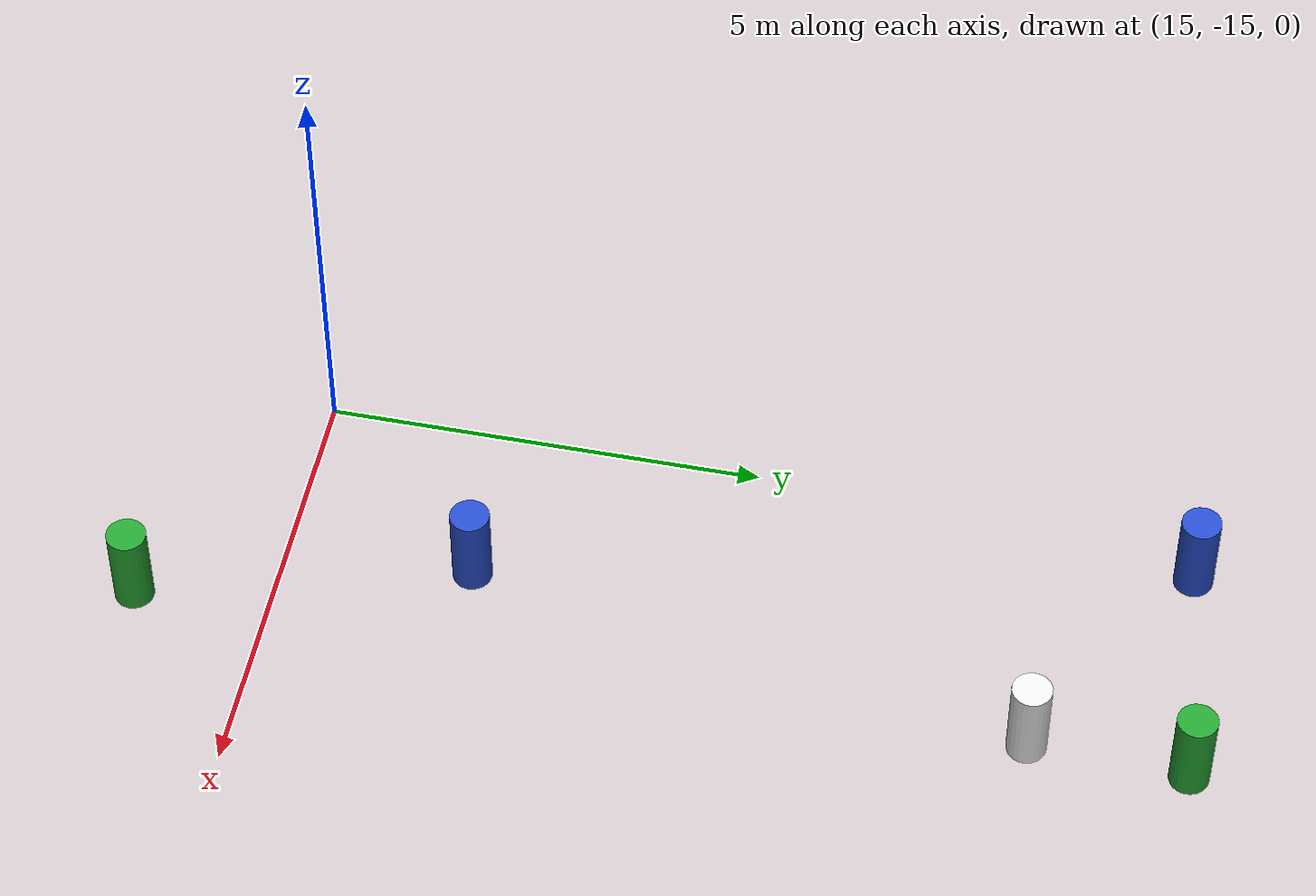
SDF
<sdf version="1.7">
 <world name="IGVC AutoNav">
  <model name="barrel">
   <link name="link">
    <inertial>
     <mass>1</mass>
     <inertia><ixx>0.145833</ixx><ixy>0</ixy><ixz>0</ixz><iyy>0.145833</iyy><iyz>0</iyz><izz>0.125</izz></inertia>
    </inertial>
    <visual name="visual">
     <geometry><cylinder><radius>0.222916</radius><length>1.03567</length></cylinder></geometry>
     <material>
      <script><name>Gazebo/Blue</name><uri>file://media/materials/scripts/gazebo.material</uri></script>
      <shader type="pixel"/>
     </material>
    </visual>
    <collision name="collision">
     <geometry><cylinder><radius>0.222916</radius><length>1.03567</length></cylinder></geometry>
     <surface>
      <friction>
       <ode><mu>1</mu><mu2>1</mu2><fdir1>0 0 0</fdir1><slip1>0</slip1><slip2>0</slip2></ode>
       <torsional>
        <coefficient>1</coefficient>
        <patch_radius>0</patch_radius>
        <surface_radius>0</surface_radius>
        <use_patch_radius>1</use_patch_radius>
        <ode><slip>0</slip></ode>
       </torsional>
      </friction>
      <bounce><restitution_coefficient>0</restitution_coefficient><threshold>1e+06</threshold></bounce>
      <contact>
       <collide_without_contact>0</collide_without_contact>
       <collide_without_contact_bitmask>1</collide_without_contact_bitmask>
       <collide_bitmask>1</collide_bitmask>
       <ode>
        <soft_cfm>0</soft_cfm>
        <soft_erp>0.2</soft_erp>
        <kp>1e+13</kp>
        <kd>1</kd>
        <max_vel>0.01</max_vel>
        <min_depth>0</min_depth>
       </ode>
       <bullet>
        <split_impulse>1</split_impulse>
        <split_impulse_penetration_threshold>-0.01</split_impulse_penetration_threshold>
        <soft_cfm>0</soft_cfm>
        <soft_erp>0.2</soft_erp>
        <kp>1e+13</kp>
        <kd>1</kd>
       </bullet>
      </contact>
     </surface>
    </collision>
   </link>
   <static>0</static>
   <pose>17.0065 -12.8825 0.517834 1e-06 1e-06 0.000368</pose>
  </model>
  <model name="barrel_0">
   <link name="link">
    <inertial>
     <mass>1</mass>
     <inertia><ixx>0.145833</ixx><ixy>0</ixy><ixz>0</ixz><iyy>0.145833</iyy><iyz>0</iyz><izz>0.125</izz></inertia>
    </inertial>
    <visual name="visual">
     <geometry><cylinder><radius>0.222916</radius><length>1.03567</length></cylinder></geometry>
     <material>
      <script><name>Gazebo/Green</name><uri>file://media/materials/scripts/gazebo.material</uri></script>
      <shader type="pixel"/>
     </material>
    </visual>
    <collision name="collision">
     <geometry><cylinder><radius>0.222916</radius><length>1.03567</length></cylinder></geometry>
     <surface>
      <friction>
       <ode><mu>1</mu><mu2>1</mu2><fdir1>0 0 0</fdir1><slip1>0</slip1><slip2>0</slip2></ode>
       <torsional>
        <coefficient>1</coefficient>
        <patch_radius>0</patch_radius>
        <surface_radius>0</surface_radius>
        <use_patch_radius>1</use_patch_radius>
        <ode><slip>0</slip></ode>
       </torsional>
      </friction>
      <bounce><restitution_coefficient>0</restitution_coefficient><threshold>1e+06</threshold></bounce>
      <contact>
       <collide_without_contact>0</collide_without_contact>
       <collide_without_contact_bitmask>1</collide_without_contact_bitmask>
       <collide_bitmask>1</collide_bitmask>
       <ode>
        <soft_cfm>0</soft_cfm>
        <soft_erp>0.2</soft_erp>
        <kp>1e+13</kp>
        <kd>1</kd>
        <max_vel>0.01</max_vel>
        <min_depth>0</min_depth>
       </ode>
       <bullet>
        <split_impulse>1</split_impulse>
        <split_impulse_penetration_threshold>-0.01</split_impulse_penetration_threshold>
        <soft_cfm>0</soft_cfm>
        <soft_erp>0.2</soft_erp>
        <kp>1e+13</kp>
        <kd>1</kd>
       </bullet>
      </contact>
     </surface>
    </collision>
   </link>
   <static>0</static>
   <pose>18.0196 -16.5153 0.517834 0 -0 0.000413</pose>
  </model>
  <model name="barrel_30">
   <link name="link">
    <inertial>
     <mass>1</mass>
     <inertia><ixx>0.145833</ixx><ixy>0</ixy><ixz>0</ixz><iyy>0.145833</iyy><iyz>0</iyz><izz>0.125</izz></inertia>
    </inertial>
    <visual name="visual">
     <geometry><cylinder><radius>0.222916</radius><length>1.03567</length></cylinder></geometry>
     <material>
      <script><name>Gazebo/Green</name><uri>file://media/materials/scripts/gazebo.material</uri></script>
      <shader type="pixel"/>
     </material>
    </visual>
    <collision name="collision">
     <geometry><cylinder><radius>0.222916</radius><length>1.03567</length></cylinder></geometry>
     <surface>
      <friction>
       <ode><mu>1</mu><mu2>1</mu2><fdir1>0 0 0</fdir1><slip1>0</slip1><slip2>0</slip2></ode>
       <torsional>
        <coefficient>1</coefficient>
        <patch_radius>0</patch_radius>
        <surface_radius>0</surface_radius>
        <use_patch_radius>1</use_patch_radius>
        <ode><slip>0</slip></ode>
       </torsional>
      </friction>
      <bounce><restitution_coefficient>0</restitution_coefficient><threshold>1e+06</threshold></bounce>
      <contact>
       <collide_without_contact>0</collide_without_contact>
       <collide_without_contact_bitmask>1</collide_without_contact_bitmask>
       <collide_bitmask>1</collide_bitmask>
       <ode>
        <soft_cfm>0</soft_cfm>
        <soft_erp>0.2</soft_erp>
        <kp>1e+13</kp>
        <kd>1</kd>
        <max_vel>0.01</max_vel>
        <min_depth>0</min_depth>
       </ode>
       <bullet>
        <split_impulse>1</split_impulse>
        <split_impulse_penetration_threshold>-0.01</split_impulse_penetration_threshold>
        <soft_cfm>0</soft_cfm>
        <soft_erp>0.2</soft_erp>
        <kp>1e+13</kp>
        <kd>1</kd>
       </bullet>
      </contact>
     </surface>
    </collision>
   </link>
   <static>0</static>
   <pose>18.1831 -4.69047 0.517834 1e-06 1e-06 0.000313</pose>
  </model>
  <model name="barrel_33">
   <link name="link">
    <inertial>
     <mass>1</mass>
     <inertia><ixx>0.145833</ixx><ixy>0</ixy><ixz>0</ixz><iyy>0.145833</iyy><iyz>0</iyz><izz>0.125</izz></inertia>
    </inertial>
    <visual name="visual">
     <geometry><cylinder><radius>0.222916</radius><length>1.03567</length></cylinder></geometry>
     <material>
      <script><name>Gazebo/White</name><uri>file://media/materials/scripts/gazebo.material</uri></script>
      <shader type="pixel"/>
     </material>
    </visual>
    <collision name="collision">
     <geometry><cylinder><radius>0.222916</radius><length>1.03567</length></cylinder></geometry>
     <surface>
      <friction>
       <ode><mu>1</mu><mu2>1</mu2><fdir1>0 0 0</fdir1><slip1>0</slip1><slip2>0</slip2></ode>
       <torsional>
        <coefficient>1</coefficient>
        <patch_radius>0</patch_radius>
        <surface_radius>0</surface_radius>
        <use_patch_radius>1</use_patch_radius>
        <ode><slip>0</slip></ode>
       </torsional>
      </friction>
      <bounce><restitution_coefficient>0</restitution_coefficient><threshold>1e+06</threshold></bounce>
      <contact>
       <collide_without_contact>0</collide_without_contact>
       <collide_without_contact_bitmask>1</collide_without_contact_bitmask>
       <collide_bitmask>1</collide_bitmask>
       <ode>
        <soft_cfm>0</soft_cfm>
        <soft_erp>0.2</soft_erp>
        <kp>1e+13</kp>
        <kd>1</kd>
        <max_vel>0.01</max_vel>
        <min_depth>0</min_depth>
       </ode>
       <bullet>
        <split_impulse>1</split_impulse>
        <split_impulse_penetration_threshold>-0.01</split_impulse_penetration_threshold>
        <soft_cfm>0</soft_cfm>
        <soft_erp>0.2</soft_erp>
        <kp>1e+13</kp>
        <kd>1</kd>
       </bullet>
      </contact>
     </surface>
    </collision>
   </link>
   <static>0</static>
   <pose>18.1254 -6.46687 0.517834 1e-06 1e-06 0.000296</pose>
  </model>
  <model name="barrel_36">
   <link name="link">
    <inertial>
     <mass>1</mass>
     <inertia><ixx>0.145833</ixx><ixy>0</ixy><ixz>0</ixz><iyy>0.145833</iyy><iyz>0</iyz><izz>0.125</izz></inertia>
    </inertial>
    <visual name="visual">
     <geometry><cylinder><radius>0.222916</radius><length>1.03567</length></cylinder></geometry>
     <material>
      <script><name>Gazebo/Blue</name><uri>file://media/materials/scripts/gazebo.material</uri></script>
      <shader type="pixel"/>
     </material>
    </visual>
    <collision name="collision">
     <geometry><cylinder><radius>0.222916</radius><length>1.03567</length></cylinder></geometry>
     <surface>
      <friction>
       <ode><mu>1</mu><mu2>1</mu2><fdir1>0 0 0</fdir1><slip1>0</slip1><slip2>0</slip2></ode>
       <torsional>
        <coefficient>1</coefficient>
        <patch_radius>0</patch_radius>
        <surface_radius>0</surface_radius>
        <use_patch_radius>1</use_patch_radius>
        <ode><slip>0</slip></ode>
       </torsional>
      </friction>
      <bounce><restitution_coefficient>0</restitution_coefficient><threshold>1e+06</threshold></bounce>
      <contact>
       <collide_without_contact>0</collide_without_contact>
       <collide_without_contact_bitmask>1</collide_without_contact_bitmask>
       <collide_bitmask>1</collide_bitmask>
       <ode>
        <soft_cfm>0</soft_cfm>
        <soft_erp>0.2</soft_erp>
        <kp>1e+13</kp>
        <kd>1</kd>
        <max_vel>0.01</max_vel>
        <min_depth>0</min_depth>
       </ode>
       <bullet>
        <split_impulse>1</split_impulse>
        <split_impulse_penetration_threshold>-0.01</split_impulse_penetration_threshold>
        <soft_cfm>0</soft_cfm>
        <soft_erp>0.2</soft_erp>
        <kp>1e+13</kp>
        <kd>1</kd>
       </bullet>
      </contact>
     </surface>
    </collision>
   </link>
   <static>0</static>
   <pose>15.5004 -4.96576 0.517834 0 -0 0.000319</pose>
  </model>
 </world>
</sdf>
